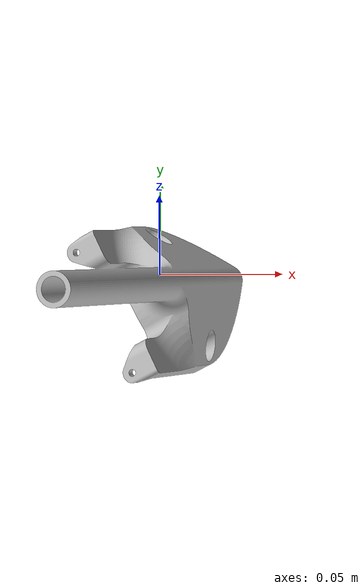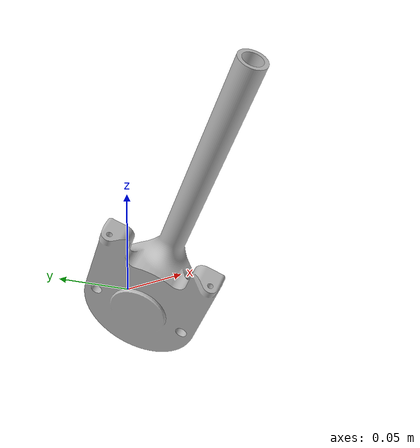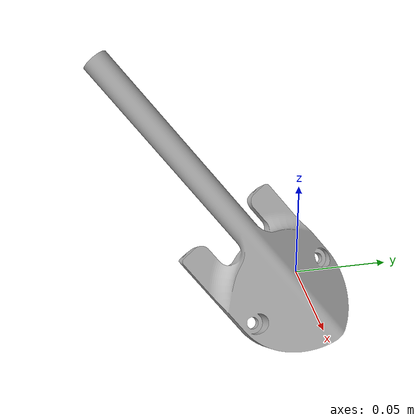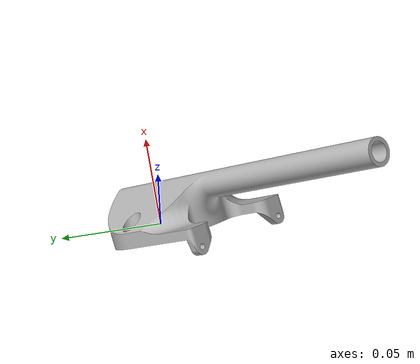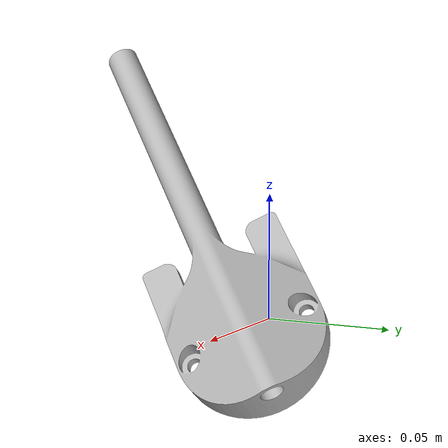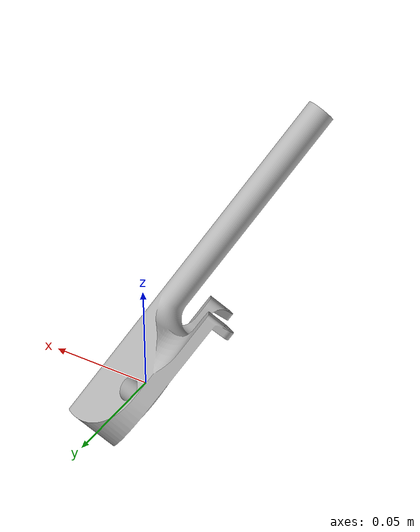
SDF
<?xml version='1.0' encoding='utf-8'?>
<!-- https://stackoverflow.com/questions/79470924/does-drake-have-an-equivalent-of-mujoco-mocap-bodies -->
<sdf version="1.9" xmlns:drake="http://drake.mit.edu">
<model name="rope_holder">
    <pose>0 0 0 0 0 0</pose>
    <joint name="translate_joint_x" type="prismatic">
      <parent>world</parent>
      <child>false_0</child>
      <axis>
        <xyz expressed_in="__model__">1 0 0</xyz>
      </axis>
      <drake:controller_gains p='1000000.0' d='100000.0' />
    </joint>
    <link name="false_0">
      <inertial>
        <inertia>
          <ixx>0.0001</ixx>
          <ixy>0</ixy>
          <ixz>0</ixz>
          <iyy>0.0001</iyy>
          <iyz>0</iyz>
          <izz>0.0001</izz>
        </inertia>
        <mass>0.09</mass>
      </inertial>
    </link>
    <joint name="translate_joint_y" type="prismatic">
      <parent>false_0</parent>
      <child>false_1</child>
      <axis>
        <xyz expressed_in="__model__">0 1 0</xyz>
      </axis>
      <drake:controller_gains p='1000000.0' d='100000.0' />
    </joint>
    <link name="false_1">
      <inertial>
        <inertia>
          <ixx>0.0001</ixx>
          <ixy>0</ixy>
          <ixz>0</ixz>
          <iyy>0.0001</iyy>
          <iyz>0</iyz>
          <izz>0.0001</izz>
        </inertia>
        <mass>0.09</mass>
      </inertial>
    </link>
    <joint name="translate_joint_z" type="prismatic">
      <parent>false_1</parent>
      <child>false_2</child>
      <axis>
        <xyz expressed_in="__model__">0 0 1</xyz>
      </axis>
      <drake:controller_gains p='1000000.0' d='100000.0' />
    </joint>
    <link name="false_2">
      <inertial>
        <inertia>
          <ixx>0.0001</ixx>
          <ixy>0</ixy>
          <ixz>0</ixz>
          <iyy>0.0001</iyy>
          <iyz>0</iyz>
          <izz>0.0001</izz>
        </inertia>
        <mass>0.09</mass>
      </inertial>
    </link>
    <joint name="rotate_joint_1" type="revolute">
      <parent>false_2</parent>
      <child>false_3</child>
      <axis>
        <xyz expressed_in="false_2">0 1 0</xyz>
      </axis>
      <drake:controller_gains p='1000000.0' d='100000.0' />
    </joint>
    <link name="false_3">
      <inertial>
        <inertia>
          <ixx>0.0001</ixx>
          <ixy>0</ixy>
          <ixz>0</ixz>
          <iyy>0.0001</iyy>
          <iyz>0</iyz>
          <izz>0.0001</izz>
        </inertia>
        <mass>0.09</mass>
      </inertial>
    </link>
    <joint name="rotate_joint_2" type="revolute">
      <parent>false_3</parent>
      <child>false_4</child>
      <axis>
        <xyz expressed_in="false_3">1 0 0</xyz>
      </axis>
      <drake:controller_gains p='1000000.0' d='100000.0' />
    </joint>
    <link name="false_4"></link>
    <joint name="rotate_joint_3" type="revolute">
      <pose degrees="True" relative_to="false_4">0 0 0 0 0 0</pose>
      <parent>false_4</parent>
      <child>rope_holder_body</child>
      <axis>
        <xyz expressed_in="false_4">0 1 0</xyz>
      </axis>
      <drake:controller_gains p='1000000.0' d='100000.0' />
    </joint>

    <link name="rope_holder_body">
      <pose degrees="True" relative_to="false_4">0 0 0 0 0 0</pose>
      <inertial>
        <inertia>
          <ixx>0.0001</ixx>
          <ixy>0</ixy>
          <ixz>0</ixz>
          <iyy>0.0001</iyy>
          <iyz>0</iyz>
          <izz>0.0001</izz>
        </inertia>
        <mass>0.09</mass>
      </inertial>
      <collision name="rope_holder_body_collision">
        <pose degrees="True" relative_to="rope_holder_center">0 0.075 -0.02 90 0 0</pose>
        <geometry>
          <cylinder>
            <radius>0.00675</radius>
            <length>0.15</length>
          </cylinder>
        </geometry>
      </collision>
      <visual name="rope_holder_body_visual">
      <pose degrees="True" relative_to="rope_holder_center">0 0 0 0 0 180</pose>
        <geometry>
          <mesh>
            <scale>1 1 1</scale>
            <uri>package://flying_knot_models/rope/meshes/rope_holder_body.obj</uri>
          </mesh>
        </geometry>
      </visual>
    </link>
    <frame name="rope_holder_center" attached_to="rope_holder_body">
      <pose degrees="True" relative_to="false_4">0 -0.007 -0.0105 3 1 0</pose>
    </frame>
    <frame name="rope_holder_tip" attached_to="rope_holder_center">
      <pose degrees="True">0.003 0.15 -0.02 0 0 0</pose>
    </frame>
    <frame name="rope_start_frame" attached_to="rope_holder_center">
      <pose degrees="True">0.001 0.14 -0.02 0 0 0</pose>
    </frame>
  </model>
</sdf>
